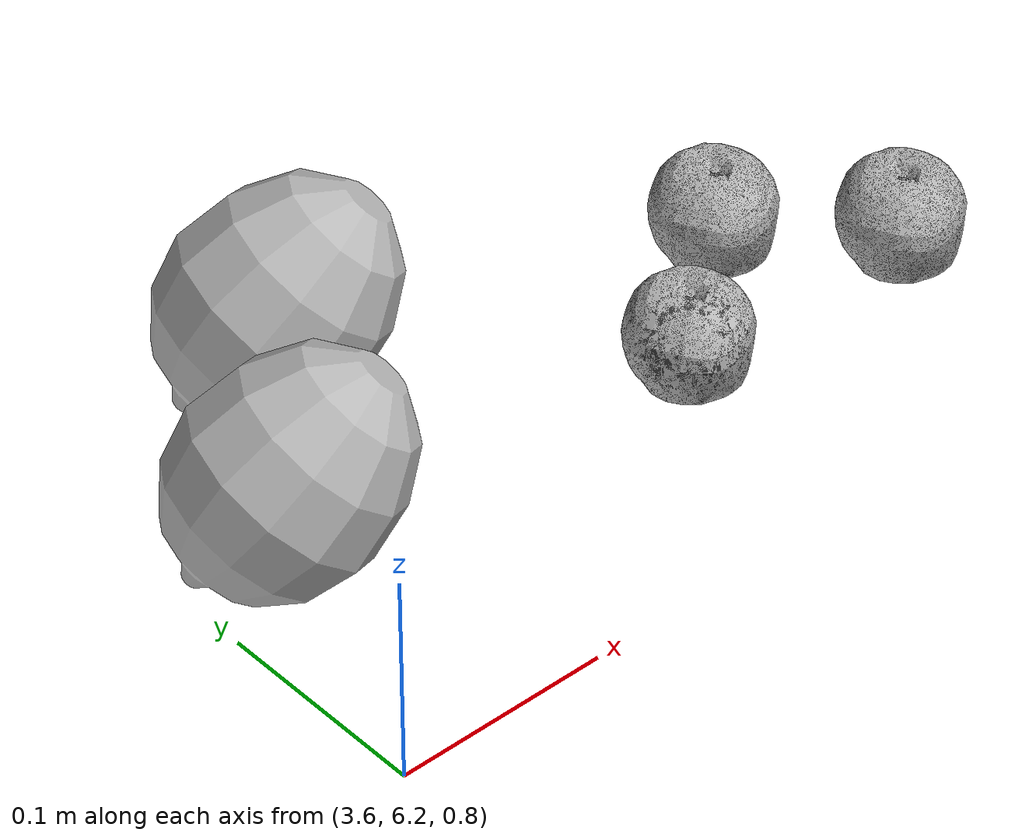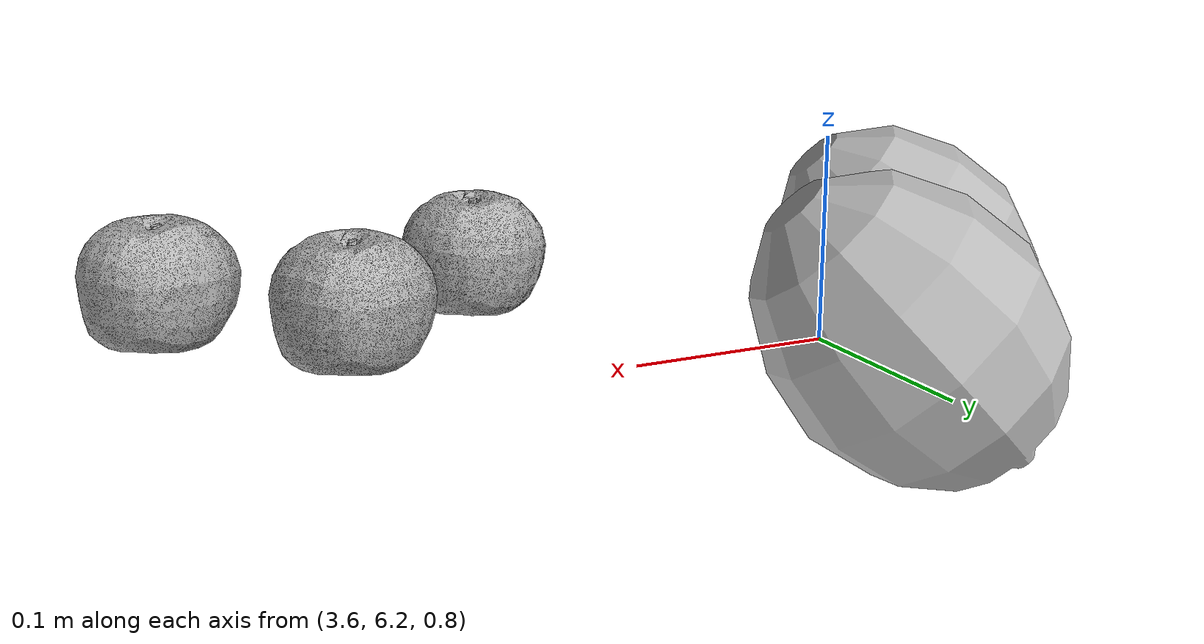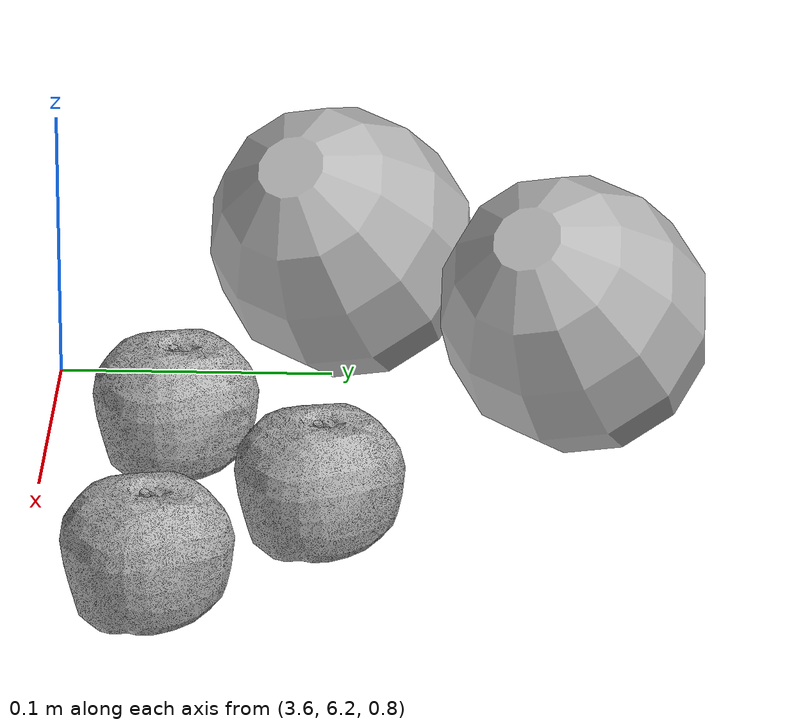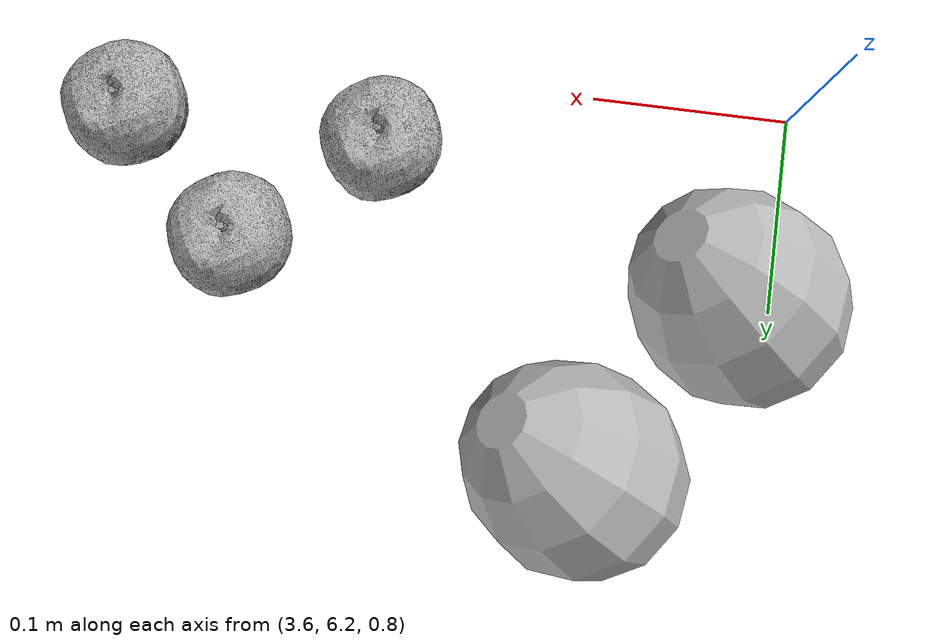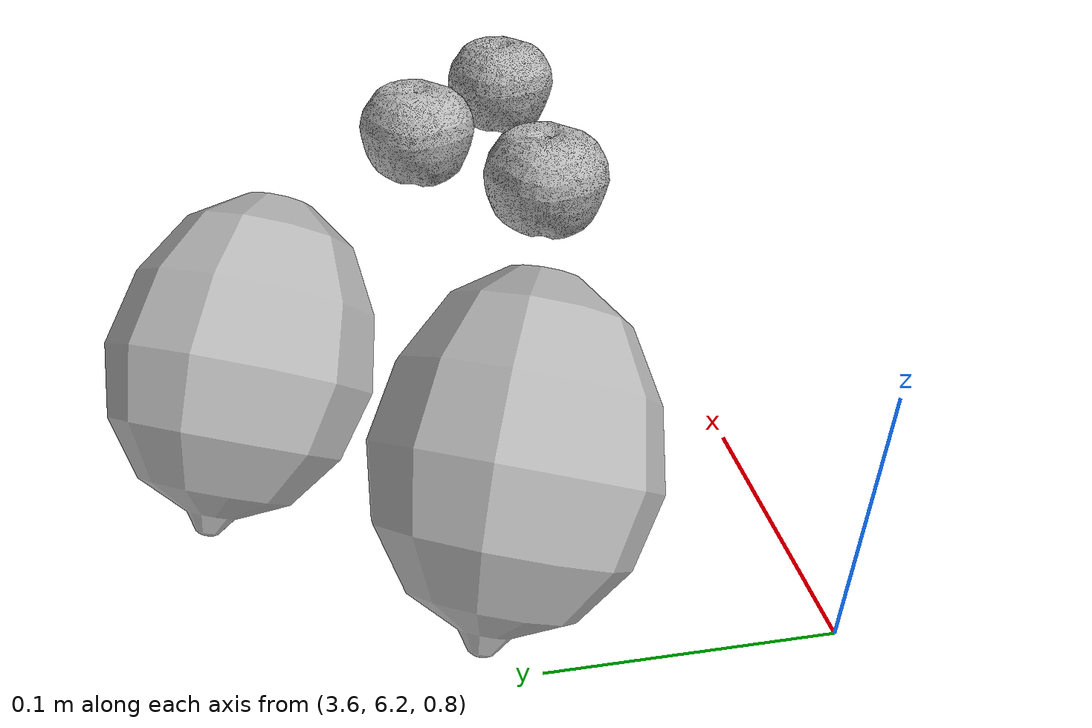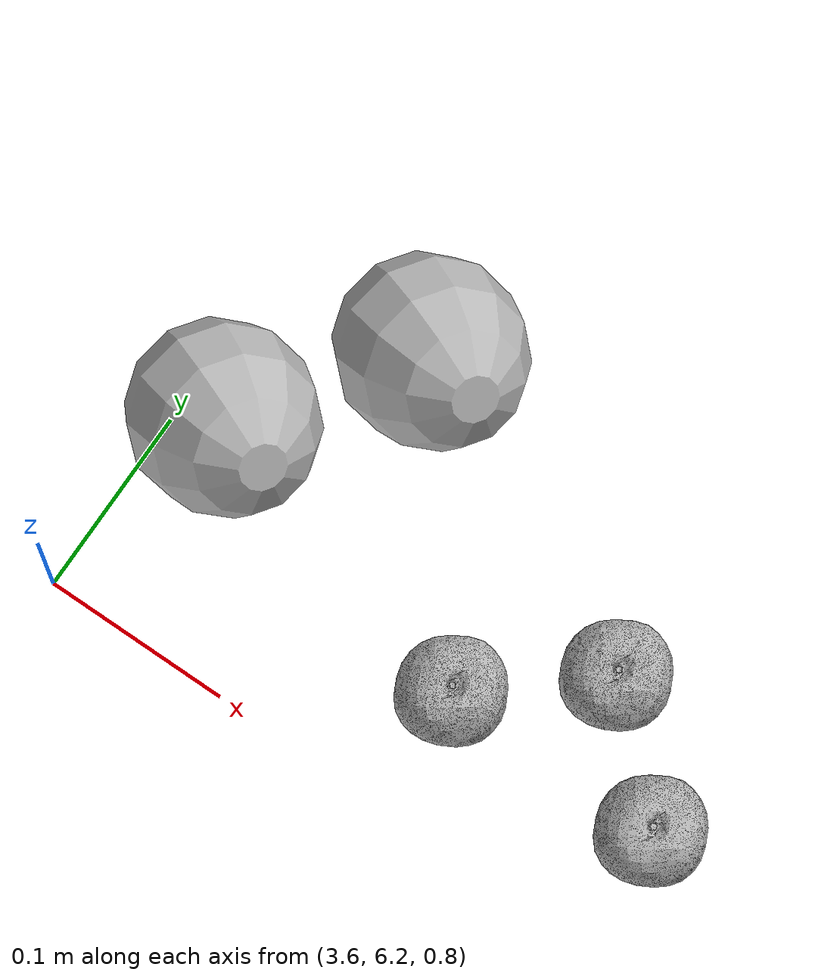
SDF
<sdf version="1.6">
 <world name="default">
  <model name="apple_clone_25">
   <link name="link_0">
    <inertial>
     <mass>1</mass>
     <inertia>
      <ixx>0.166667</ixx>
      <ixy>0</ixy>
      <ixz>0</ixz>
      <iyy>0.166667</iyy>
      <iyz>0</iyz>
      <izz>0.166667</izz>
     </inertia>
    </inertial>
    <visual name="visual">
     <geometry><mesh><uri>model://apple/meshes/apple.dae</uri><scale>1 1 1</scale></mesh></geometry>
    </visual>
    <collision name="collision">
     <geometry><mesh><uri>model://apple/meshes/apple.dae</uri><scale>1 1 1</scale></mesh></geometry>
     <surface>
      <friction>
       <ode><mu>1</mu><mu2>1</mu2><fdir1>0 0 0</fdir1><slip1>0</slip1><slip2>0</slip2></ode>
       <torsional>
        <coefficient>1</coefficient>
        <patch_radius>0</patch_radius>
        <surface_radius>0</surface_radius>
        <use_patch_radius>1</use_patch_radius>
        <ode><slip>0</slip></ode>
       </torsional>
      </friction>
      <bounce><restitution_coefficient>0</restitution_coefficient><threshold>1e+06</threshold></bounce>
      <contact>
       <collide_without_contact>0</collide_without_contact>
       <collide_without_contact_bitmask>1</collide_without_contact_bitmask>
       <collide_bitmask>1</collide_bitmask>
       <ode>
        <soft_cfm>0</soft_cfm>
        <soft_erp>0.2</soft_erp>
        <kp>1e+13</kp>
        <kd>1</kd>
        <max_vel>0.01</max_vel>
        <min_depth>0</min_depth>
       </ode>
       <bullet>
        <split_impulse>1</split_impulse>
        <split_impulse_penetration_threshold>-0.01</split_impulse_penetration_threshold>
        <soft_cfm>0</soft_cfm>
        <soft_erp>0.2</soft_erp>
        <kp>1e+13</kp>
        <kd>1</kd>
       </bullet>
      </contact>
     </surface>
    </collision>
   </link>
   <static>1</static>
   <pose>3.84857 6.30346 0.862702 0 -0 0</pose>
  </model>
  <model name="apple_clone_26">
   <link name="link_0">
    <inertial>
     <mass>1</mass>
     <inertia>
      <ixx>0.166667</ixx>
      <ixy>0</ixy>
      <ixz>0</ixz>
      <iyy>0.166667</iyy>
      <iyz>0</iyz>
      <izz>0.166667</izz>
     </inertia>
    </inertial>
    <visual name="visual">
     <geometry><mesh><uri>model://apple/meshes/apple.dae</uri><scale>1 1 1</scale></mesh></geometry>
    </visual>
    <collision name="collision">
     <geometry><mesh><uri>model://apple/meshes/apple.dae</uri><scale>1 1 1</scale></mesh></geometry>
     <surface>
      <friction>
       <ode><mu>1</mu><mu2>1</mu2><fdir1>0 0 0</fdir1><slip1>0</slip1><slip2>0</slip2></ode>
       <torsional>
        <coefficient>1</coefficient>
        <patch_radius>0</patch_radius>
        <surface_radius>0</surface_radius>
        <use_patch_radius>1</use_patch_radius>
        <ode><slip>0</slip></ode>
       </torsional>
      </friction>
      <bounce><restitution_coefficient>0</restitution_coefficient><threshold>1e+06</threshold></bounce>
      <contact>
       <collide_without_contact>0</collide_without_contact>
       <collide_without_contact_bitmask>1</collide_without_contact_bitmask>
       <collide_bitmask>1</collide_bitmask>
       <ode>
        <soft_cfm>0</soft_cfm>
        <soft_erp>0.2</soft_erp>
        <kp>1e+13</kp>
        <kd>1</kd>
        <max_vel>0.01</max_vel>
        <min_depth>0</min_depth>
       </ode>
       <bullet>
        <split_impulse>1</split_impulse>
        <split_impulse_penetration_threshold>-0.01</split_impulse_penetration_threshold>
        <soft_cfm>0</soft_cfm>
        <soft_erp>0.2</soft_erp>
        <kp>1e+13</kp>
        <kd>1</kd>
       </bullet>
      </contact>
     </surface>
    </collision>
   </link>
   <static>1</static>
   <pose>3.78865 6.25306 0.862702 0 -0 0</pose>
  </model>
  <model name="apple_clone_27">
   <link name="link_0">
    <inertial>
     <mass>1</mass>
     <inertia>
      <ixx>0.166667</ixx>
      <ixy>0</ixy>
      <ixz>0</ixz>
      <iyy>0.166667</iyy>
      <iyz>0</iyz>
      <izz>0.166667</izz>
     </inertia>
    </inertial>
    <visual name="visual">
     <geometry><mesh><uri>model://apple/meshes/apple.dae</uri><scale>1 1 1</scale></mesh></geometry>
    </visual>
    <collision name="collision">
     <geometry><mesh><uri>model://apple/meshes/apple.dae</uri><scale>1 1 1</scale></mesh></geometry>
     <surface>
      <friction>
       <ode><mu>1</mu><mu2>1</mu2><fdir1>0 0 0</fdir1><slip1>0</slip1><slip2>0</slip2></ode>
       <torsional>
        <coefficient>1</coefficient>
        <patch_radius>0</patch_radius>
        <surface_radius>0</surface_radius>
        <use_patch_radius>1</use_patch_radius>
        <ode><slip>0</slip></ode>
       </torsional>
      </friction>
      <bounce><restitution_coefficient>0</restitution_coefficient><threshold>1e+06</threshold></bounce>
      <contact>
       <collide_without_contact>0</collide_without_contact>
       <collide_without_contact_bitmask>1</collide_without_contact_bitmask>
       <collide_bitmask>1</collide_bitmask>
       <ode>
        <soft_cfm>0</soft_cfm>
        <soft_erp>0.2</soft_erp>
        <kp>1e+13</kp>
        <kd>1</kd>
        <max_vel>0.01</max_vel>
        <min_depth>0</min_depth>
       </ode>
       <bullet>
        <split_impulse>1</split_impulse>
        <split_impulse_penetration_threshold>-0.01</split_impulse_penetration_threshold>
        <soft_cfm>0</soft_cfm>
        <soft_erp>0.2</soft_erp>
        <kp>1e+13</kp>
        <kd>1</kd>
       </bullet>
      </contact>
     </surface>
    </collision>
   </link>
   <static>1</static>
   <pose>3.90335 6.25108 0.862702 0 -0 0</pose>
  </model>
  <model name="lime">
   <link name="link_0">
    <inertial>
     <mass>1</mass>
     <inertia>
      <ixx>0.166667</ixx>
      <ixy>0</ixy>
      <ixz>0</ixz>
      <iyy>0.166667</iyy>
      <iyz>0</iyz>
      <izz>0.166667</izz>
     </inertia>
    </inertial>
    <visual name="visual">
     <geometry><mesh><uri>model://lime/meshes/lime.dae</uri><scale>1 1 1</scale></mesh></geometry>
    </visual>
    <collision name="collision">
     <geometry><mesh><uri>model://lime/meshes/lime.dae</uri><scale>1 1 1</scale></mesh></geometry>
     <surface>
      <friction>
       <ode><mu>1</mu><mu2>1</mu2><fdir1>0 0 0</fdir1><slip1>0</slip1><slip2>0</slip2></ode>
       <torsional>
        <coefficient>1</coefficient>
        <patch_radius>0</patch_radius>
        <surface_radius>0</surface_radius>
        <use_patch_radius>1</use_patch_radius>
        <ode><slip>0</slip></ode>
       </torsional>
      </friction>
      <bounce><restitution_coefficient>0</restitution_coefficient><threshold>1e+06</threshold></bounce>
      <contact>
       <collide_without_contact>0</collide_without_contact>
       <collide_without_contact_bitmask>1</collide_without_contact_bitmask>
       <collide_bitmask>1</collide_bitmask>
       <ode>
        <soft_cfm>0</soft_cfm>
        <soft_erp>0.2</soft_erp>
        <kp>1e+13</kp>
        <kd>1</kd>
        <max_vel>0.01</max_vel>
        <min_depth>0</min_depth>
       </ode>
       <bullet>
        <split_impulse>1</split_impulse>
        <split_impulse_penetration_threshold>-0.01</split_impulse_penetration_threshold>
        <soft_cfm>0</soft_cfm>
        <soft_erp>0.2</soft_erp>
        <kp>1e+13</kp>
        <kd>1</kd>
       </bullet>
      </contact>
     </surface>
    </collision>
   </link>
   <static>1</static>
   <pose>3.68013 6.35337 0.896084 0 -0 0</pose>
  </model>
  <model name="lime_clone">
   <link name="link_0">
    <inertial>
     <mass>1</mass>
     <inertia>
      <ixx>0.166667</ixx>
      <ixy>0</ixy>
      <ixz>0</ixz>
      <iyy>0.166667</iyy>
      <iyz>0</iyz>
      <izz>0.166667</izz>
     </inertia>
    </inertial>
    <visual name="visual">
     <geometry><mesh><uri>model://lime/meshes/lime.dae</uri><scale>1 1 1</scale></mesh></geometry>
    </visual>
    <collision name="collision">
     <geometry><mesh><uri>model://lime/meshes/lime.dae</uri><scale>1 1 1</scale></mesh></geometry>
     <surface>
      <friction>
       <ode><mu>1</mu><mu2>1</mu2><fdir1>0 0 0</fdir1><slip1>0</slip1><slip2>0</slip2></ode>
       <torsional>
        <coefficient>1</coefficient>
        <patch_radius>0</patch_radius>
        <surface_radius>0</surface_radius>
        <use_patch_radius>1</use_patch_radius>
        <ode><slip>0</slip></ode>
       </torsional>
      </friction>
      <bounce><restitution_coefficient>0</restitution_coefficient><threshold>1e+06</threshold></bounce>
      <contact>
       <collide_without_contact>0</collide_without_contact>
       <collide_without_contact_bitmask>1</collide_without_contact_bitmask>
       <collide_bitmask>1</collide_bitmask>
       <ode>
        <soft_cfm>0</soft_cfm>
        <soft_erp>0.2</soft_erp>
        <kp>1e+13</kp>
        <kd>1</kd>
        <max_vel>0.01</max_vel>
        <min_depth>0</min_depth>
       </ode>
       <bullet>
        <split_impulse>1</split_impulse>
        <split_impulse_penetration_threshold>-0.01</split_impulse_penetration_threshold>
        <soft_cfm>0</soft_cfm>
        <soft_erp>0.2</soft_erp>
        <kp>1e+13</kp>
        <kd>1</kd>
       </bullet>
      </contact>
     </surface>
    </collision>
   </link>
   <static>1</static>
   <pose>3.6165 6.26975 0.896084 0 -0 0</pose>
  </model>
 </world>
</sdf>
